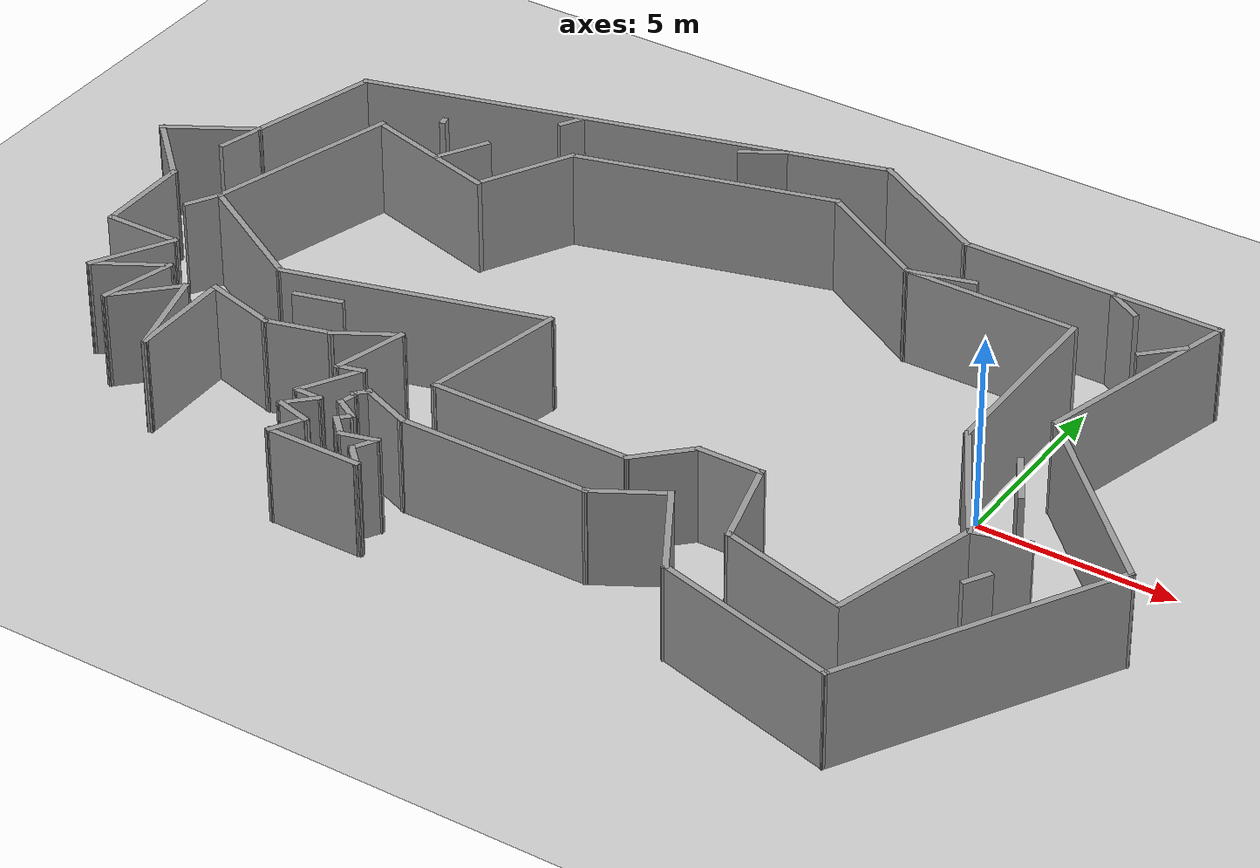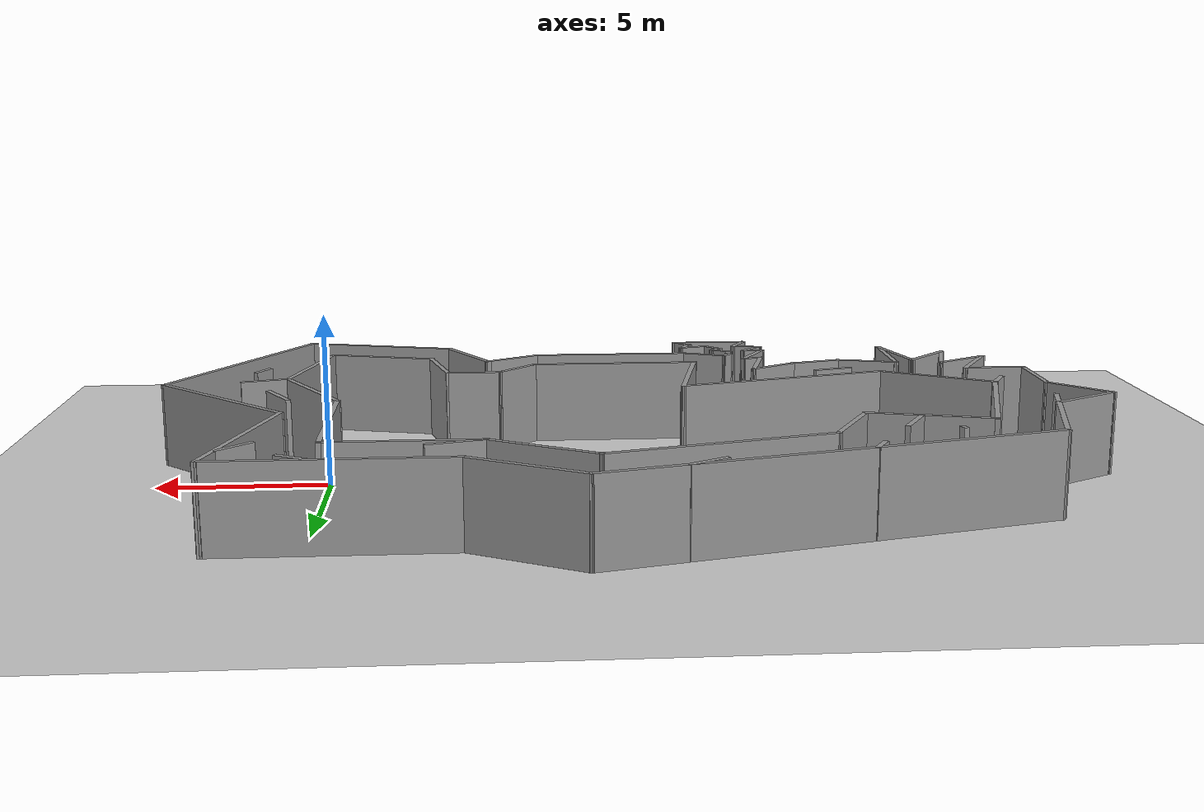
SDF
<sdf version="1.5">
 <world name="default">
  <include><static>1</static><uri>model://deep_parkour</uri></include>
  <physics name="ode_70iters" type="ode">
   <real_time_update_rate>1000</real_time_update_rate>
   <ode><solver><type>quick</type><iters>100</iters></solver></ode>
  </physics>
  <include><uri>model://ground_plane</uri></include>
  <include><uri>model://sun</uri></include>
  <light type="directional" name="my_light0">
   <pose>0 0 30 0 0 0</pose>
   <diffuse>0.5 0.5 0.5 1</diffuse>
   <specular>0.1 0.1 0.1 1</specular>
   <direction>0.1 0.1 -0.9</direction>
   <attenuation>
    <range>20</range>
    <linear>0.01</linear>
    <constant>0.5</constant>
    <quadratic>0.001</quadratic>
   </attenuation>
   <cast_shadows>0</cast_shadows>
  </light>
  <scene><ambient>0.0 0.0 0.0 1.0</ambient><shadows>0</shadows></scene>
 </world>
</sdf>

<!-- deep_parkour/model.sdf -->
<sdf version='1.6'>
  <model name='deep_parkour'>
    <pose frame=''>-8.92528 -0.363415 0 0 -0 0</pose>
    <link name='Wall_10'>
      <collision name='Wall_10_Collision'>
        <geometry>
          <box>
            <size>5.25 0.15 2.5</size>
          </box>
        </geometry>
        <pose frame=''>0 0 1.25 0 -0 0</pose>
      </collision>
      <visual name='Wall_10_Visual'>
        <pose frame=''>0 0 1.25 0 -0 0</pose>
        <geometry>
          <box>
            <size>5.25 0.15 2.5</size>
          </box>
        </geometry>
        <material>
          <script>
            <uri>file://media/materials/scripts/gazebo.material</uri>
            <name>Gazebo/Grey</name>
          </script>
          <ambient>1 1 1 1</ambient>
        </material>
        <meta>
          <layer>0</layer>
        </meta>
      </visual>
      <pose frame=''>0.326482 -4.56206 0 0 -0 0</pose>
    </link>
    <link name='Wall_11'>
      <collision name='Wall_11_Collision'>
        <geometry>
          <box>
            <size>1.75 0.15 2.5</size>
          </box>
        </geometry>
        <pose frame=''>0 0 1.25 0 -0 0</pose>
      </collision>
      <visual name='Wall_11_Visual'>
        <pose frame=''>0 0 1.25 0 -0 0</pose>
        <geometry>
          <box>
            <size>1.75 0.15 2.5</size>
          </box>
        </geometry>
        <material>
          <script>
            <uri>file://media/materials/scripts/gazebo.material</uri>
            <name>Gazebo/Grey</name>
          </script>
          <ambient>1 1 1 1</ambient>
        </material>
        <meta>
          <layer>0</layer>
        </meta>
      </visual>
      <pose frame=''>3.44217 -3.99637 0 0 -0 0.785398</pose>
    </link>
    <link name='Wall_12'>
      <collision name='Wall_12_Collision'>
        <geometry>
          <box>
            <size>1.75 0.15 2.5</size>
          </box>
        </geometry>
        <pose frame=''>0 0 1.25 0 -0 0</pose>
      </collision>
      <visual name='Wall_12_Visual'>
        <pose frame=''>0 0 1.25 0 -0 0</pose>
        <geometry>
          <box>
            <size>1.75 0.15 2.5</size>
          </box>
        </geometry>
        <material>
          <script>
            <uri>file://media/materials/scripts/gazebo.material</uri>
            <name>Gazebo/Grey</name>
          </script>
          <ambient>1 1 1 1</ambient>
        </material>
        <meta>
          <layer>0</layer>
        </meta>
      </visual>
      <pose frame=''>4.80785 -3.43069 0 0 -0 0</pose>
    </link>
    <link name='Wall_13'>
      <collision name='Wall_13_Collision'>
        <geometry>
          <box>
            <size>2.5 0.15 2.5</size>
          </box>
        </geometry>
        <pose frame=''>0 0 1.25 0 -0 0</pose>
      </collision>
      <visual name='Wall_13_Visual'>
        <pose frame=''>0 0 1.25 0 -0 0</pose>
        <geometry>
          <box>
            <size>2.5 0.15 2.5</size>
          </box>
        </geometry>
        <material>
          <script>
            <uri>file://media/materials/scripts/gazebo.material</uri>
            <name>Gazebo/Grey</name>
          </script>
          <ambient>1 1 1 1</ambient>
        </material>
        <meta>
          <layer>0</layer>
        </meta>
      </visual>
      <pose frame=''>5.91197 -4.56565 0 0 -0 -1.309</pose>
    </link>
    <link name='Wall_14'>
      <collision name='Wall_14_Collision'>
        <geometry>
          <box>
            <size>3.5 0.15 2.5</size>
          </box>
        </geometry>
        <pose frame=''>0 0 1.25 0 -0 0</pose>
      </collision>
      <visual name='Wall_14_Visual'>
        <pose frame=''>0 0 1.25 0 -0 0</pose>
        <geometry>
          <box>
            <size>3.5 0.15 2.5</size>
          </box>
        </geometry>
        <material>
          <script>
            <uri>file://media/materials/scripts/gazebo.material</uri>
            <name>Gazebo/Grey</name>
          </script>
          <ambient>1 1 1 1</ambient>
        </material>
        <meta>
          <layer>0</layer>
        </meta>
      </visual>
      <pose frame=''>7.834 -6.13414 0 0 -0 -0.261799</pose>
    </link>
    <link name='Wall_15'>
      <collision name='Wall_15_Collision'>
        <geometry>
          <box>
            <size>4 0.15 2.5</size>
          </box>
        </geometry>
        <pose frame=''>0 0 1.25 0 -0 0</pose>
      </collision>
      <visual name='Wall_15_Visual'>
        <pose frame=''>0 0 1.25 0 -0 0</pose>
        <geometry>
          <box>
            <size>4 0.15 2.5</size>
          </box>
        </geometry>
        <material>
          <script>
            <uri>file://media/materials/scripts/gazebo.material</uri>
            <name>Gazebo/Grey</name>
          </script>
          <ambient>1 1 1 1</ambient>
        </material>
        <meta>
          <layer>0</layer>
        </meta>
      </visual>
      <pose frame=''>9.95016 -4.70825 0 0 -0 1.309</pose>
    </link>
    <link name='Wall_16'>
      <collision name='Wall_16_Collision'>
        <geometry>
          <box>
            <size>3.75 0.15 2.5</size>
          </box>
        </geometry>
        <pose frame=''>0 0 1.25 0 -0 0</pose>
      </collision>
      <visual name='Wall_16_Visual'>
        <pose frame=''>0 0 1.25 0 -0 0</pose>
        <geometry>
          <box>
            <size>3.75 0.15 2.5</size>
          </box>
        </geometry>
        <material>
          <script>
            <uri>file://media/materials/scripts/gazebo.material</uri>
            <name>Gazebo/Grey</name>
          </script>
          <ambient>1 1 1 1</ambient>
        </material>
        <meta>
          <layer>0</layer>
        </meta>
      </visual>
      <pose frame=''>9.54838 -1.29 0 0 -0 2.0944</pose>
    </link>
    <link name='Wall_17'>
      <collision name='Wall_17_Collision'>
        <geometry>
          <box>
            <size>5 0.15 2.5</size>
          </box>
        </geometry>
        <pose frame=''>0 0 1.25 0 -0 0</pose>
      </collision>
      <visual name='Wall_17_Visual'>
        <pose frame=''>0 0 1.25 0 -0 0</pose>
        <geometry>
          <box>
            <size>5 0.15 2.5</size>
          </box>
        </geometry>
        <material>
          <script>
            <uri>file://media/materials/scripts/gazebo.material</uri>
            <name>Gazebo/Grey</name>
          </script>
          <ambient>1 1 1 1</ambient>
        </material>
        <meta>
          <layer>0</layer>
        </meta>
      </visual>
      <pose frame=''>8.64838 2.69385 0 0 -0 1.5708</pose>
    </link>
    <link name='Wall_18'>
      <collision name='Wall_18_Collision'>
        <geometry>
          <box>
            <size>4.5 0.15 2.5</size>
          </box>
        </geometry>
        <pose frame=''>0 0 1.25 0 -0 0</pose>
      </collision>
      <visual name='Wall_18_Visual'>
        <pose frame=''>0 0 1.25 0 -0 0</pose>
        <geometry>
          <box>
            <size>4.5 0.15 2.5</size>
          </box>
        </geometry>
        <material>
          <script>
            <uri>file://media/materials/scripts/gazebo.material</uri>
            <name>Gazebo/Grey</name>
          </script>
          <ambient>1 1 1 1</ambient>
        </material>
        <meta>
          <layer>0</layer>
        </meta>
      </visual>
      <pose frame=''>6.47338 5.11885 0 0 -0 3.14159</pose>
    </link>
    <link name='Wall_19'>
      <collision name='Wall_19_Collision'>
        <geometry>
          <box>
            <size>3.5 0.15 2.5</size>
          </box>
        </geometry>
        <pose frame=''>0 0 1.25 0 -0 0</pose>
      </collision>
      <visual name='Wall_19_Visual'>
        <pose frame=''>0 0 1.25 0 -0 0</pose>
        <geometry>
          <box>
            <size>3.5 0.15 2.5</size>
          </box>
        </geometry>
        <material>
          <script>
            <uri>file://media/materials/scripts/gazebo.material</uri>
            <name>Gazebo/Grey</name>
          </script>
          <ambient>1 1 1 1</ambient>
        </material>
        <meta>
          <layer>0</layer>
        </meta>
      </visual>
      <pose frame=''>2.84779 5.95635 0 0 -0 2.61799</pose>
    </link>
    <link name='Wall_20'>
      <collision name='Wall_20_Collision'>
        <geometry>
          <box>
            <size>6.75 0.15 2.5</size>
          </box>
        </geometry>
        <pose frame=''>0 0 1.25 0 -0 0</pose>
      </collision>
      <visual name='Wall_20_Visual'>
        <pose frame=''>0 0 1.25 0 -0 0</pose>
        <geometry>
          <box>
            <size>6.75 0.15 2.5</size>
          </box>
        </geometry>
        <material>
          <script>
            <uri>file://media/materials/scripts/gazebo.material</uri>
            <name>Gazebo/Grey</name>
          </script>
          <ambient>1 1 1 1</ambient>
        </material>
        <meta>
          <layer>0</layer>
        </meta>
      </visual>
      <pose frame=''>-1.79036 5.93975 0 0 -0 -2.87979</pose>
    </link>
    <link name='Wall_21'>
      <collision name='Wall_21_Collision'>
        <geometry>
          <box>
            <size>2.67804 0.15 2.5</size>
          </box>
        </geometry>
        <pose frame=''>0 0 1.25 0 -0 0</pose>
      </collision>
      <visual name='Wall_21_Visual'>
        <pose frame=''>0 0 1.25 0 -0 0</pose>
        <geometry>
          <box>
            <size>2.67804 0.15 2.5</size>
          </box>
        </geometry>
        <material>
          <script>
            <uri>file://media/materials/scripts/gazebo.material</uri>
            <name>Gazebo/Grey</name>
          </script>
          <ambient>1 1 1 1</ambient>
        </material>
        <meta>
          <layer>0</layer>
        </meta>
      </visual>
      <pose frame=''>-5.58177 3.97519 0 0 -0 -2.06886</pose>
    </link>
    <link name='Wall_22'>
      <collision name='Wall_22_Collision'>
        <geometry>
          <box>
            <size>3.75 0.15 2.5</size>
          </box>
        </geometry>
        <pose frame=''>0 0 1.25 0 -0 0</pose>
      </collision>
      <visual name='Wall_22_Visual'>
        <pose frame=''>0 0 1.25 0 -0 0</pose>
        <geometry>
          <box>
            <size>3.75 0.15 2.5</size>
          </box>
        </geometry>
        <material>
          <script>
            <uri>file://media/materials/scripts/gazebo.material</uri>
            <name>Gazebo/Grey</name>
          </script>
          <ambient>1 1 1 1</ambient>
        </material>
        <meta>
          <layer>0</layer>
        </meta>
      </visual>
      <pose frame=''>-7.92429 3.29985 0 0 -0 2.87979</pose>
    </link>
    <link name='Wall_23'>
      <collision name='Wall_23_Collision'>
        <geometry>
          <box>
            <size>5.05427 0.15 2.5</size>
          </box>
        </geometry>
        <pose frame=''>0 0 1.25 0 -0 0</pose>
      </collision>
      <visual name='Wall_23_Visual'>
        <pose frame=''>0 0 1.25 0 -0 0</pose>
        <geometry>
          <box>
            <size>5.05427 0.15 2.5</size>
          </box>
        </geometry>
        <material>
          <script>
            <uri>file://media/materials/scripts/gazebo.material</uri>
            <name>Gazebo/Grey</name>
          </script>
          <ambient>1 1 1 1</ambient>
        </material>
        <meta>
          <layer>0</layer>
        </meta>
      </visual>
      <pose frame=''>-10.3367 1.43874 0 0 -0 -1.84915</pose>
    </link>
    <link name='Wall_24'>
      <collision name='Wall_24_Collision'>
        <geometry>
          <box>
            <size>3.75 0.15 2.5</size>
          </box>
        </geometry>
        <pose frame=''>0 0 1.25 0 -0 0</pose>
      </collision>
      <visual name='Wall_24_Visual'>
        <pose frame=''>0 0 1.25 0 -0 0</pose>
        <geometry>
          <box>
            <size>3.75 0.15 2.5</size>
          </box>
        </geometry>
        <material>
          <script>
            <uri>file://media/materials/scripts/gazebo.material</uri>
            <name>Gazebo/Grey</name>
          </script>
          <ambient>1 1 1 1</ambient>
        </material>
        <meta>
          <layer>0</layer>
        </meta>
      </visual>
      <pose frame=''>-9.45167 -1.81902 0 0 -0 -0.523599</pose>
    </link>
    <link name='Wall_25'>
      <collision name='Wall_25_Collision'>
        <geometry>
          <box>
            <size>6.75 0.15 2.5</size>
          </box>
        </geometry>
        <pose frame=''>0 0 1.25 0 -0 0</pose>
      </collision>
      <visual name='Wall_25_Visual'>
        <pose frame=''>0 0 1.25 0 -0 0</pose>
        <geometry>
          <box>
            <size>6.75 0.15 2.5</size>
          </box>
        </geometry>
        <material>
          <script>
            <uri>file://media/materials/scripts/gazebo.material</uri>
            <name>Gazebo/Grey</name>
          </script>
          <ambient>1 1 1 1</ambient>
        </material>
        <meta>
          <layer>0</layer>
        </meta>
      </visual>
      <pose frame=''>-4.70527 -1.86491 0 0 -0 0.261799</pose>
    </link>
    <link name='Wall_26'>
      <collision name='Wall_26_Collision'>
        <geometry>
          <box>
            <size>3.77071 0.15 2.5</size>
          </box>
        </geometry>
        <pose frame=''>0 0 1.25 0 -0 0</pose>
      </collision>
      <visual name='Wall_26_Visual'>
        <pose frame=''>0 0 1.25 0 -0 0</pose>
        <geometry>
          <box>
            <size>3.77071 0.15 2.5</size>
          </box>
        </geometry>
        <material>
          <script>
            <uri>file://media/materials/scripts/gazebo.material</uri>
            <name>Gazebo/Grey</name>
          </script>
          <ambient>1 1 1 1</ambient>
        </material>
        <meta>
          <layer>0</layer>
        </meta>
      </visual>
      <pose frame=''>-1.87062 -2.78643 0 0 -0 -1.76699</pose>
    </link>
    <link name='Wall_28'>
      <collision name='Wall_28_Collision'>
        <geometry>
          <box>
            <size>5 0.15 2.5</size>
          </box>
        </geometry>
        <pose frame=''>0 0 1.25 0 -0 0</pose>
      </collision>
      <visual name='Wall_28_Visual'>
        <pose frame=''>0 0 1.25 0 -0 0</pose>
        <geometry>
          <box>
            <size>5 0.15 2.5</size>
          </box>
        </geometry>
        <material>
          <script>
            <uri>file://media/materials/scripts/gazebo.material</uri>
            <name>Gazebo/Grey</name>
          </script>
          <ambient>1 1 1 1</ambient>
        </material>
        <meta>
          <layer>0</layer>
        </meta>
      </visual>
      <pose frame=''>0.358173 -6.06446 0 0 -0 0</pose>
    </link>
    <link name='Wall_29'>
      <collision name='Wall_29_Collision'>
        <geometry>
          <box>
            <size>2 0.15 2.5</size>
          </box>
        </geometry>
        <pose frame=''>0 0 1.25 0 -0 0</pose>
      </collision>
      <visual name='Wall_29_Visual'>
        <pose frame=''>0 0 1.25 0 -0 0</pose>
        <geometry>
          <box>
            <size>2 0.15 2.5</size>
          </box>
        </geometry>
        <material>
          <script>
            <uri>file://media/materials/scripts/gazebo.material</uri>
            <name>Gazebo/Grey</name>
          </script>
          <ambient>1 1 1 1</ambient>
        </material>
        <meta>
          <layer>0</layer>
        </meta>
      </visual>
      <pose frame=''>3.58425 -5.60196 0 0 -0 0.523599</pose>
    </link>
    <link name='Wall_30'>
      <collision name='Wall_30_Collision'>
        <geometry>
          <box>
            <size>2.75 0.15 2.5</size>
          </box>
        </geometry>
        <pose frame=''>0 0 1.25 0 -0 0</pose>
      </collision>
      <visual name='Wall_30_Visual'>
        <pose frame=''>0 0 1.25 0 -0 0</pose>
        <geometry>
          <box>
            <size>2.75 0.15 2.5</size>
          </box>
        </geometry>
        <material>
          <script>
            <uri>file://media/materials/scripts/gazebo.material</uri>
            <name>Gazebo/Grey</name>
          </script>
          <ambient>1 1 1 1</ambient>
        </material>
        <meta>
          <layer>0</layer>
        </meta>
      </visual>
      <pose frame=''>5.03532 -6.26529 0 0 -0 -1.0472</pose>
    </link>
    <link name='Wall_31'>
      <collision name='Wall_31_Collision'>
        <geometry>
          <box>
            <size>5 0.15 2.5</size>
          </box>
        </geometry>
        <pose frame=''>0 0 1.25 0 -0 0</pose>
      </collision>
      <visual name='Wall_31_Visual'>
        <pose frame=''>0 0 1.25 0 -0 0</pose>
        <geometry>
          <box>
            <size>5 0.15 2.5</size>
          </box>
        </geometry>
        <material>
          <script>
            <uri>file://media/materials/scripts/gazebo.material</uri>
            <name>Gazebo/Grey</name>
          </script>
          <ambient>1 1 1 1</ambient>
        </material>
        <meta>
          <layer>0</layer>
        </meta>
      </visual>
      <pose frame=''>8.02769 -8.01876 0 0 -0 -0.261799</pose>
    </link>
    <link name='Wall_32'>
      <collision name='Wall_32_Collision'>
        <geometry>
          <box>
            <size>7.5 0.15 2.5</size>
          </box>
        </geometry>
        <pose frame=''>0 0 1.25 0 -0 0</pose>
      </collision>
      <visual name='Wall_32_Visual'>
        <pose frame=''>0 0 1.25 0 -0 0</pose>
        <geometry>
          <box>
            <size>7.5 0.15 2.5</size>
          </box>
        </geometry>
        <material>
          <script>
            <uri>file://media/materials/scripts/gazebo.material</uri>
            <name>Gazebo/Grey</name>
          </script>
          <ambient>1 1 1 1</ambient>
        </material>
        <meta>
          <layer>0</layer>
        </meta>
      </visual>
      <pose frame=''>12.2076 -5.46375 0 0 -0 1.0472</pose>
    </link>
    <link name='Wall_33'>
      <collision name='Wall_33_Collision'>
        <geometry>
          <box>
            <size>5.75 0.15 2.5</size>
          </box>
        </geometry>
        <pose frame=''>0 0 1.25 0 -0 0</pose>
      </collision>
      <visual name='Wall_33_Visual'>
        <pose frame=''>0 0 1.25 0 -0 0</pose>
        <geometry>
          <box>
            <size>5.75 0.15 2.5</size>
          </box>
        </geometry>
        <material>
          <script>
            <uri>file://media/materials/scripts/gazebo.material</uri>
            <name>Gazebo/Grey</name>
          </script>
          <ambient>1 1 1 1</ambient>
        </material>
        <meta>
          <layer>0</layer>
        </meta>
      </visual>
      <pose frame=''>12.0652 -0.301209 0 0 -0 2.35619</pose>
    </link>
    <link name='Wall_34'>
      <collision name='Wall_34_Collision'>
        <geometry>
          <box>
            <size>5.5 0.15 2.5</size>
          </box>
        </geometry>
        <pose frame=''>0 0 1.25 0 -0 0</pose>
      </collision>
      <visual name='Wall_34_Visual'>
        <pose frame=''>0 0 1.25 0 -0 0</pose>
        <geometry>
          <box>
            <size>5.5 0.15 2.5</size>
          </box>
        </geometry>
        <material>
          <script>
            <uri>file://media/materials/scripts/gazebo.material</uri>
            <name>Gazebo/Grey</name>
          </script>
          <ambient>1 1 1 1</ambient>
        </material>
        <meta>
          <layer>0</layer>
        </meta>
      </visual>
      <pose frame=''>10.7776 4.26254 0 0 -0 1.309</pose>
    </link>
    <link name='Wall_35'>
      <collision name='Wall_35_Collision'>
        <geometry>
          <box>
            <size>6.75 0.15 2.5</size>
          </box>
        </geometry>
        <pose frame=''>0 0 1.25 0 -0 0</pose>
      </collision>
      <visual name='Wall_35_Visual'>
        <pose frame=''>0 0 1.25 0 -0 0</pose>
        <geometry>
          <box>
            <size>6.75 0.15 2.5</size>
          </box>
        </geometry>
        <material>
          <script>
            <uri>file://media/materials/scripts/gazebo.material</uri>
            <name>Gazebo/Grey</name>
          </script>
          <ambient>1 1 1 1</ambient>
        </material>
        <meta>
          <layer>0</layer>
        </meta>
      </visual>
      <pose frame=''>8.16994 6.84639 0 0 -0 3.14159</pose>
    </link>
    <link name='Wall_36'>
      <collision name='Wall_36_Collision'>
        <geometry>
          <box>
            <size>3.75 0.15 2.5</size>
          </box>
        </geometry>
        <pose frame=''>0 0 1.25 0 -0 0</pose>
      </collision>
      <visual name='Wall_36_Visual'>
        <pose frame=''>0 0 1.25 0 -0 0</pose>
        <geometry>
          <box>
            <size>3.75 0.15 2.5</size>
          </box>
        </geometry>
        <material>
          <script>
            <uri>file://media/materials/scripts/gazebo.material</uri>
            <name>Gazebo/Grey</name>
          </script>
          <ambient>1 1 1 1</ambient>
        </material>
        <meta>
          <layer>0</layer>
        </meta>
      </visual>
      <pose frame=''>3.3111 7.74639 0 0 -0 2.61799</pose>
    </link>
    <link name='Wall_37'>
      <collision name='Wall_37_Collision'>
        <geometry>
          <box>
            <size>13.5 0.15 2.5</size>
          </box>
        </geometry>
        <pose frame=''>0 0 1.25 0 -0 0</pose>
      </collision>
      <visual name='Wall_37_Visual'>
        <pose frame=''>0 0 1.25 0 -0 0</pose>
        <geometry>
          <box>
            <size>13.5 0.15 2.5</size>
          </box>
        </geometry>
        <material>
          <script>
            <uri>file://media/materials/scripts/gazebo.material</uri>
            <name>Gazebo/Grey</name>
          </script>
          <ambient>1 1 1 1</ambient>
        </material>
        <meta>
          <layer>0</layer>
        </meta>
      </visual>
      <pose frame=''>-4.6953 6.91878 0 0 -0 -2.87979</pose>
    </link>
    <link name='Wall_38'>
      <collision name='Wall_38_Collision'>
        <geometry>
          <box>
            <size>3.5 0.15 2.5</size>
          </box>
        </geometry>
        <pose frame=''>0 0 1.25 0 -0 0</pose>
      </collision>
      <visual name='Wall_38_Visual'>
        <pose frame=''>0 0 1.25 0 -0 0</pose>
        <geometry>
          <box>
            <size>3.5 0.15 2.5</size>
          </box>
        </geometry>
        <material>
          <script>
            <uri>file://media/materials/scripts/gazebo.material</uri>
            <name>Gazebo/Grey</name>
          </script>
          <ambient>1 1 1 1</ambient>
        </material>
        <meta>
          <layer>0</layer>
        </meta>
      </visual>
      <pose frame=''>-11.5764 3.57323 0 0 -0 -1.8326</pose>
    </link>
    <link name='Wall_39'>
      <collision name='Wall_39_Collision'>
        <geometry>
          <box>
            <size>2.5 0.15 2.5</size>
          </box>
        </geometry>
        <pose frame=''>0 0 1.25 0 -0 0</pose>
      </collision>
      <visual name='Wall_39_Visual'>
        <pose frame=''>0 0 1.25 0 -0 0</pose>
        <geometry>
          <box>
            <size>2.5 0.15 2.5</size>
          </box>
        </geometry>
        <material>
          <script>
            <uri>file://media/materials/scripts/gazebo.material</uri>
            <name>Gazebo/Grey</name>
          </script>
          <ambient>1 1 1 1</ambient>
        </material>
        <meta>
          <layer>0</layer>
        </meta>
      </visual>
      <pose frame=''>-13.0275 1.36781 0 0 -0 -2.61799</pose>
    </link>
    <link name='Wall_40'>
      <collision name='Wall_40_Collision'>
        <geometry>
          <box>
            <size>2.25 0.15 2.5</size>
          </box>
        </geometry>
        <pose frame=''>0 0 1.25 0 -0 0</pose>
      </collision>
      <visual name='Wall_40_Visual'>
        <pose frame=''>0 0 1.25 0 -0 0</pose>
        <geometry>
          <box>
            <size>2.25 0.15 2.5</size>
          </box>
        </geometry>
        <material>
          <script>
            <uri>file://media/materials/scripts/gazebo.material</uri>
            <name>Gazebo/Grey</name>
          </script>
          <ambient>1 1 1 1</ambient>
        </material>
        <meta>
          <layer>0</layer>
        </meta>
      </visual>
      <pose frame=''>-13.3026 0.037846 0 0 -0 -0.785398</pose>
    </link>
    <link name='Wall_41'>
      <collision name='Wall_41_Collision'>
        <geometry>
          <box>
            <size>2.5 0.15 2.5</size>
          </box>
        </geometry>
        <pose frame=''>0 0 1.25 0 -0 0</pose>
      </collision>
      <visual name='Wall_41_Visual'>
        <pose frame=''>0 0 1.25 0 -0 0</pose>
        <geometry>
          <box>
            <size>2.5 0.15 2.5</size>
          </box>
        </geometry>
        <material>
          <script>
            <uri>file://media/materials/scripts/gazebo.material</uri>
            <name>Gazebo/Grey</name>
          </script>
          <ambient>1 1 1 1</ambient>
        </material>
        <meta>
          <layer>0</layer>
        </meta>
      </visual>
      <pose frame=''>-12.5601 -1.87962 0 0 -0 -1.5708</pose>
    </link>
    <link name='Wall_42'>
      <collision name='Wall_42_Collision'>
        <geometry>
          <box>
            <size>2 0.15 2.5</size>
          </box>
        </geometry>
        <pose frame=''>0 0 1.25 0 -0 0</pose>
      </collision>
      <visual name='Wall_42_Visual'>
        <pose frame=''>0 0 1.25 0 -0 0</pose>
        <geometry>
          <box>
            <size>2 0.15 2.5</size>
          </box>
        </geometry>
        <material>
          <script>
            <uri>file://media/materials/scripts/gazebo.material</uri>
            <name>Gazebo/Grey</name>
          </script>
          <ambient>1 1 1 1</ambient>
        </material>
        <meta>
          <layer>0</layer>
        </meta>
      </visual>
      <pose frame=''>-11.6351 -3.05462 0 0 -0 0</pose>
    </link>
    <link name='Wall_43'>
      <collision name='Wall_43_Collision'>
        <geometry>
          <box>
            <size>2.25 0.15 2.5</size>
          </box>
        </geometry>
        <pose frame=''>0 0 1.25 0 -0 0</pose>
      </collision>
      <visual name='Wall_43_Visual'>
        <pose frame=''>0 0 1.25 0 -0 0</pose>
        <geometry>
          <box>
            <size>2.25 0.15 2.5</size>
          </box>
        </geometry>
        <material>
          <script>
            <uri>file://media/materials/scripts/gazebo.material</uri>
            <name>Gazebo/Grey</name>
          </script>
          <ambient>1 1 1 1</ambient>
        </material>
        <meta>
          <layer>0</layer>
        </meta>
      </visual>
      <pose frame=''>-11.2351 -3.96394 0 0 -0 -2.0944</pose>
    </link>
    <link name='Wall_44'>
      <collision name='Wall_44_Collision'>
        <geometry>
          <box>
            <size>2 0.15 2.5</size>
          </box>
        </geometry>
        <pose frame=''>0 0 1.25 0 -0 0</pose>
      </collision>
      <visual name='Wall_44_Visual'>
        <pose frame=''>0 0 1.25 0 -0 0</pose>
        <geometry>
          <box>
            <size>2 0.15 2.5</size>
          </box>
        </geometry>
        <material>
          <script>
            <uri>file://media/materials/scripts/gazebo.material</uri>
            <name>Gazebo/Grey</name>
          </script>
          <ambient>1 1 1 1</ambient>
        </material>
        <meta>
          <layer>0</layer>
        </meta>
      </visual>
      <pose frame=''>-10.9591 -4.41077 0 0 -0 0.523599</pose>
    </link>
    <link name='Wall_45'>
      <collision name='Wall_45_Collision'>
        <geometry>
          <box>
            <size>2 0.15 2.5</size>
          </box>
        </geometry>
        <pose frame=''>0 0 1.25 0 -0 0</pose>
      </collision>
      <visual name='Wall_45_Visual'>
        <pose frame=''>0 0 1.25 0 -0 0</pose>
        <geometry>
          <box>
            <size>2 0.15 2.5</size>
          </box>
        </geometry>
        <material>
          <script>
            <uri>file://media/materials/scripts/gazebo.material</uri>
            <name>Gazebo/Grey</name>
          </script>
          <ambient>1 1 1 1</ambient>
        </material>
        <meta>
          <layer>0</layer>
        </meta>
      </visual>
      <pose frame=''>-10.3974 -4.84175 0 0 -0 -1.8326</pose>
    </link>
    <link name='Wall_46'>
      <collision name='Wall_46_Collision'>
        <geometry>
          <box>
            <size>2 0.15 2.5</size>
          </box>
        </geometry>
        <pose frame=''>0 0 1.25 0 -0 0</pose>
      </collision>
      <visual name='Wall_46_Visual'>
        <pose frame=''>0 0 1.25 0 -0 0</pose>
        <geometry>
          <box>
            <size>2 0.15 2.5</size>
          </box>
        </geometry>
        <material>
          <script>
            <uri>file://media/materials/scripts/gazebo.material</uri>
            <name>Gazebo/Grey</name>
          </script>
          <ambient>1 1 1 1</ambient>
        </material>
        <meta>
          <layer>0</layer>
        </meta>
      </visual>
      <pose frame=''>-9.98273 -5.08116 0 0 -0 0.785398</pose>
    </link>
    <link name='Wall_47'>
      <collision name='Wall_47_Collision'>
        <geometry>
          <box>
            <size>2.5 0.15 2.5</size>
          </box>
        </geometry>
        <pose frame=''>0 0 1.25 0 -0 0</pose>
      </collision>
      <visual name='Wall_47_Visual'>
        <pose frame=''>0 0 1.25 0 -0 0</pose>
        <geometry>
          <box>
            <size>2.5 0.15 2.5</size>
          </box>
        </geometry>
        <material>
          <script>
            <uri>file://media/materials/scripts/gazebo.material</uri>
            <name>Gazebo/Grey</name>
          </script>
          <ambient>1 1 1 1</ambient>
        </material>
        <meta>
          <layer>0</layer>
        </meta>
      </visual>
      <pose frame=''>-9.02454 -5.56205 0 0 -0 -1.309</pose>
    </link>
    <link name='Wall_48'>
      <collision name='Wall_48_Collision'>
        <geometry>
          <box>
            <size>2.75 0.15 2.5</size>
          </box>
        </geometry>
        <pose frame=''>0 0 1.25 0 -0 0</pose>
      </collision>
      <visual name='Wall_48_Visual'>
        <pose frame=''>0 0 1.25 0 -0 0</pose>
        <geometry>
          <box>
            <size>2.75 0.15 2.5</size>
          </box>
        </geometry>
        <material>
          <script>
            <uri>file://media/materials/scripts/gazebo.material</uri>
            <name>Gazebo/Grey</name>
          </script>
          <ambient>1 1 1 1</ambient>
        </material>
        <meta>
          <layer>0</layer>
        </meta>
      </visual>
      <pose frame=''>-8.72043 -5.39701 0 0 -0 1.5708</pose>
    </link>
    <link name='Wall_49'>
      <collision name='Wall_49_Collision'>
        <geometry>
          <box>
            <size>2 0.15 2.5</size>
          </box>
        </geometry>
        <pose frame=''>0 0 1.25 0 -0 0</pose>
      </collision>
      <visual name='Wall_49_Visual'>
        <pose frame=''>0 0 1.25 0 -0 0</pose>
        <geometry>
          <box>
            <size>2 0.15 2.5</size>
          </box>
        </geometry>
        <material>
          <script>
            <uri>file://media/materials/scripts/gazebo.material</uri>
            <name>Gazebo/Grey</name>
          </script>
          <ambient>1 1 1 1</ambient>
        </material>
        <meta>
          <layer>0</layer>
        </meta>
      </visual>
      <pose frame=''>-7.82695 -4.33642 0 0 -0 -0.261799</pose>
    </link>
    <link name='Wall_50'>
      <collision name='Wall_50_Collision'>
        <geometry>
          <box>
            <size>1.75 0.15 2.5</size>
          </box>
        </geometry>
        <pose frame=''>0 0 1.25 0 -0 0</pose>
      </collision>
      <visual name='Wall_50_Visual'>
        <pose frame=''>0 0 1.25 0 -0 0</pose>
        <geometry>
          <box>
            <size>1.75 0.15 2.5</size>
          </box>
        </geometry>
        <material>
          <script>
            <uri>file://media/materials/scripts/gazebo.material</uri>
            <name>Gazebo/Grey</name>
          </script>
          <ambient>1 1 1 1</ambient>
        </material>
        <meta>
          <layer>0</layer>
        </meta>
      </visual>
      <pose frame=''>-6.16073 -4.36877 0 0 -0 0.261799</pose>
    </link>
    <link name='Wall_51'>
      <collision name='Wall_51_Collision'>
        <geometry>
          <box>
            <size>1.75 0.15 2.5</size>
          </box>
        </geometry>
        <pose frame=''>0 0 1.25 0 -0 0</pose>
      </collision>
      <visual name='Wall_51_Visual'>
        <pose frame=''>0 0 1.25 0 -0 0</pose>
        <geometry>
          <box>
            <size>1.75 0.15 2.5</size>
          </box>
        </geometry>
        <material>
          <script>
            <uri>file://media/materials/scripts/gazebo.material</uri>
            <name>Gazebo/Grey</name>
          </script>
          <ambient>1 1 1 1</ambient>
        </material>
        <meta>
          <layer>0</layer>
        </meta>
      </visual>
      <pose frame=''>-4.69517 -3.76172 0 0 -0 0.523599</pose>
    </link>
    <link name='Wall_52'>
      <collision name='Wall_52_Collision'>
        <geometry>
          <box>
            <size>2 0.15 2.5</size>
          </box>
        </geometry>
        <pose frame=''>0 0 1.25 0 -0 0</pose>
      </collision>
      <visual name='Wall_52_Visual'>
        <pose frame=''>0 0 1.25 0 -0 0</pose>
        <geometry>
          <box>
            <size>2 0.15 2.5</size>
          </box>
        </geometry>
        <material>
          <script>
            <uri>file://media/materials/scripts/gazebo.material</uri>
            <name>Gazebo/Grey</name>
          </script>
          <ambient>1 1 1 1</ambient>
        </material>
        <meta>
          <layer>0</layer>
        </meta>
      </visual>
      <pose frame=''>-4.24176 -4.2552 0 0 -0 -1.8326</pose>
    </link>
    <link name='Wall_53'>
      <collision name='Wall_53_Collision'>
        <geometry>
          <box>
            <size>0.75 0.15 2.5</size>
          </box>
        </geometry>
        <pose frame=''>0 0 1.25 0 -0 0</pose>
      </collision>
      <visual name='Wall_53_Visual'>
        <pose frame=''>0 0 1.25 0 -0 0</pose>
        <geometry>
          <box>
            <size>0.75 0.15 2.5</size>
          </box>
        </geometry>
        <material>
          <script>
            <uri>file://media/materials/scripts/gazebo.material</uri>
            <name>Gazebo/Grey</name>
          </script>
          <ambient>1 1 1 1</ambient>
        </material>
        <meta>
          <layer>0</layer>
        </meta>
      </visual>
      <pose frame=''>-4.19139 -5.07103 0 0 -0 0.261799</pose>
    </link>
    <link name='Wall_54'>
      <collision name='Wall_54_Collision'>
        <geometry>
          <box>
            <size>1.75 0.15 2.5</size>
          </box>
        </geometry>
        <pose frame=''>0 0 1.25 0 -0 0</pose>
      </collision>
      <visual name='Wall_54_Visual'>
        <pose frame=''>0 0 1.25 0 -0 0</pose>
        <geometry>
          <box>
            <size>1.75 0.15 2.5</size>
          </box>
        </geometry>
        <material>
          <script>
            <uri>file://media/materials/scripts/gazebo.material</uri>
            <name>Gazebo/Grey</name>
          </script>
          <ambient>1 1 1 1</ambient>
        </material>
        <meta>
          <layer>0</layer>
        </meta>
      </visual>
      <pose frame=''>-4.30161 -5.68621 0 0 -0 -2.0944</pose>
    </link>
    <link name='Wall_55'>
      <collision name='Wall_55_Collision'>
        <geometry>
          <box>
            <size>0.75 0.15 2.5</size>
          </box>
        </geometry>
        <pose frame=''>0 0 1.25 0 -0 0</pose>
      </collision>
      <visual name='Wall_55_Visual'>
        <pose frame=''>0 0 1.25 0 -0 0</pose>
        <geometry>
          <box>
            <size>0.75 0.15 2.5</size>
          </box>
        </geometry>
        <material>
          <script>
            <uri>file://media/materials/scripts/gazebo.material</uri>
            <name>Gazebo/Grey</name>
          </script>
          <ambient>1 1 1 1</ambient>
        </material>
        <meta>
          <layer>0</layer>
        </meta>
      </visual>
      <pose frame=''>-4.40161 -6.37903 0 0 -0 0</pose>
    </link>
    <link name='Wall_56'>
      <collision name='Wall_56_Collision'>
        <geometry>
          <box>
            <size>1 0.15 2.5</size>
          </box>
        </geometry>
        <pose frame=''>0 0 1.25 0 -0 0</pose>
      </collision>
      <visual name='Wall_56_Visual'>
        <pose frame=''>0 0 1.25 0 -0 0</pose>
        <geometry>
          <box>
            <size>1 0.15 2.5</size>
          </box>
        </geometry>
        <material>
          <script>
            <uri>file://media/materials/scripts/gazebo.material</uri>
            <name>Gazebo/Grey</name>
          </script>
          <ambient>1 1 1 1</ambient>
        </material>
        <meta>
          <layer>0</layer>
        </meta>
      </visual>
      <pose frame=''>-4.40213 -6.67955 0 0 -0 -2.35619</pose>
    </link>
    <link name='Wall_57'>
      <collision name='Wall_57_Collision'>
        <geometry>
          <box>
            <size>1 0.15 2.5</size>
          </box>
        </geometry>
        <pose frame=''>0 0 1.25 0 -0 0</pose>
      </collision>
      <visual name='Wall_57_Visual'>
        <pose frame=''>0 0 1.25 0 -0 0</pose>
        <geometry>
          <box>
            <size>1 0.15 2.5</size>
          </box>
        </geometry>
        <material>
          <script>
            <uri>file://media/materials/scripts/gazebo.material</uri>
            <name>Gazebo/Grey</name>
          </script>
          <ambient>1 1 1 1</ambient>
        </material>
        <meta>
          <layer>0</layer>
        </meta>
      </visual>
      <pose frame=''>-4.29213 -7.09007 0 0 -0 -0.261799</pose>
    </link>
    <link name='Wall_58'>
      <collision name='Wall_58_Collision'>
        <geometry>
          <box>
            <size>1 0.15 2.5</size>
          </box>
        </geometry>
        <pose frame=''>0 0 1.25 0 -0 0</pose>
      </collision>
      <visual name='Wall_58_Visual'>
        <pose frame=''>0 0 1.25 0 -0 0</pose>
        <geometry>
          <box>
            <size>1 0.15 2.5</size>
          </box>
        </geometry>
        <material>
          <script>
            <uri>file://media/materials/scripts/gazebo.material</uri>
            <name>Gazebo/Grey</name>
          </script>
          <ambient>1 1 1 1</ambient>
        </material>
        <meta>
          <layer>0</layer>
        </meta>
      </visual>
      <pose frame=''>-4.09411 -7.56813 0 0 -0 -2.0944</pose>
    </link>
    <link name='Wall_59'>
      <collision name='Wall_59_Collision'>
        <geometry>
          <box>
            <size>2.5 0.15 2.5</size>
          </box>
        </geometry>
        <pose frame=''>0 0 1.25 0 -0 0</pose>
      </collision>
      <visual name='Wall_59_Visual'>
        <pose frame=''>0 0 1.25 0 -0 0</pose>
        <geometry>
          <box>
            <size>2.5 0.15 2.5</size>
          </box>
        </geometry>
        <material>
          <script>
            <uri>file://media/materials/scripts/gazebo.material</uri>
            <name>Gazebo/Grey</name>
          </script>
          <ambient>1 1 1 1</ambient>
        </material>
        <meta>
          <layer>0</layer>
        </meta>
      </visual>
      <pose frame=''>-3.13161 -7.93619 0 0 -0 0</pose>
    </link>
    <link name='Wall_60'>
      <collision name='Wall_60_Collision'>
        <geometry>
          <box>
            <size>0.75 0.15 2.5</size>
          </box>
        </geometry>
        <pose frame=''>0 0 1.25 0 -0 0</pose>
      </collision>
      <visual name='Wall_60_Visual'>
        <pose frame=''>0 0 1.25 0 -0 0</pose>
        <geometry>
          <box>
            <size>0.75 0.15 2.5</size>
          </box>
        </geometry>
        <material>
          <script>
            <uri>file://media/materials/scripts/gazebo.material</uri>
            <name>Gazebo/Grey</name>
          </script>
          <ambient>1 1 1 1</ambient>
        </material>
        <meta>
          <layer>0</layer>
        </meta>
      </visual>
      <pose frame=''>-2.16874 -7.72405 0 0 -0 2.35619</pose>
    </link>
    <link name='Wall_61'>
      <collision name='Wall_61_Collision'>
        <geometry>
          <box>
            <size>0.75 0.15 2.5</size>
          </box>
        </geometry>
        <pose frame=''>0 0 1.25 0 -0 0</pose>
      </collision>
      <visual name='Wall_61_Visual'>
        <pose frame=''>0 0 1.25 0 -0 0</pose>
        <geometry>
          <box>
            <size>0.75 0.15 2.5</size>
          </box>
        </geometry>
        <material>
          <script>
            <uri>file://media/materials/scripts/gazebo.material</uri>
            <name>Gazebo/Grey</name>
          </script>
          <ambient>1 1 1 1</ambient>
        </material>
        <meta>
          <layer>0</layer>
        </meta>
      </visual>
      <pose frame=''>-2.23088 -7.25211 0 0 -0 1.0472</pose>
    </link>
    <link name='Wall_62'>
      <collision name='Wall_62_Collision'>
        <geometry>
          <box>
            <size>1 0.15 2.5</size>
          </box>
        </geometry>
        <pose frame=''>0 0 1.25 0 -0 0</pose>
      </collision>
      <visual name='Wall_62_Visual'>
        <pose frame=''>0 0 1.25 0 -0 0</pose>
        <geometry>
          <box>
            <size>1 0.15 2.5</size>
          </box>
        </geometry>
        <material>
          <script>
            <uri>file://media/materials/scripts/gazebo.material</uri>
            <name>Gazebo/Grey</name>
          </script>
          <ambient>1 1 1 1</ambient>
        </material>
        <meta>
          <layer>0</layer>
        </meta>
      </visual>
      <pose frame=''>-2.49139 -7.10231 0 0 -0 -2.87979</pose>
    </link>
    <link name='Wall_63'>
      <collision name='Wall_63_Collision'>
        <geometry>
          <box>
            <size>0.75 0.15 2.5</size>
          </box>
        </geometry>
        <pose frame=''>0 0 1.25 0 -0 0</pose>
      </collision>
      <visual name='Wall_63_Visual'>
        <pose frame=''>0 0 1.25 0 -0 0</pose>
        <geometry>
          <box>
            <size>0.75 0.15 2.5</size>
          </box>
        </geometry>
        <material>
          <script>
            <uri>file://media/materials/scripts/gazebo.material</uri>
            <name>Gazebo/Grey</name>
          </script>
          <ambient>1 1 1 1</ambient>
        </material>
        <meta>
          <layer>0</layer>
        </meta>
      </visual>
      <pose frame=''>-3.11404 -7.00017 0 0 -0 2.35619</pose>
    </link>
    <link name='Wall_64'>
      <collision name='Wall_64_Collision'>
        <geometry>
          <box>
            <size>0.5 0.15 2.5</size>
          </box>
        </geometry>
        <pose frame=''>0 0 1.25 0 -0 0</pose>
      </collision>
      <visual name='Wall_64_Visual'>
        <pose frame=''>0 0 1.25 0 -0 0</pose>
        <geometry>
          <box>
            <size>0.5 0.15 2.5</size>
          </box>
        </geometry>
        <material>
          <script>
            <uri>file://media/materials/scripts/gazebo.material</uri>
            <name>Gazebo/Grey</name>
          </script>
          <ambient>1 1 1 1</ambient>
        </material>
        <meta>
          <layer>0</layer>
        </meta>
      </visual>
      <pose frame=''>-3.20243 -6.6643 0 0 -0 0.785398</pose>
    </link>
    <link name='Wall_65'>
      <collision name='Wall_65_Collision'>
        <geometry>
          <box>
            <size>0.75 0.15 2.5</size>
          </box>
        </geometry>
        <pose frame=''>0 0 1.25 0 -0 0</pose>
      </collision>
      <visual name='Wall_65_Visual'>
        <pose frame=''>0 0 1.25 0 -0 0</pose>
        <geometry>
          <box>
            <size>0.75 0.15 2.5</size>
          </box>
        </geometry>
        <material>
          <script>
            <uri>file://media/materials/scripts/gazebo.material</uri>
            <name>Gazebo/Grey</name>
          </script>
          <ambient>1 1 1 1</ambient>
        </material>
        <meta>
          <layer>0</layer>
        </meta>
      </visual>
      <pose frame=''>-3.3385 -6.39055 0 0 -0 2.61799</pose>
    </link>
    <link name='Wall_66'>
      <collision name='Wall_66_Collision'>
        <geometry>
          <box>
            <size>0.5 0.15 2.5</size>
          </box>
        </geometry>
        <pose frame=''>0 0 1.25 0 -0 0</pose>
      </collision>
      <visual name='Wall_66_Visual'>
        <pose frame=''>0 0 1.25 0 -0 0</pose>
        <geometry>
          <box>
            <size>0.5 0.15 2.5</size>
          </box>
        </geometry>
        <material>
          <script>
            <uri>file://media/materials/scripts/gazebo.material</uri>
            <name>Gazebo/Grey</name>
          </script>
          <ambient>1 1 1 1</ambient>
        </material>
        <meta>
          <layer>0</layer>
        </meta>
      </visual>
      <pose frame=''>-3.55301 -6.07151 0 0 -0 1.309</pose>
    </link>
    <link name='Wall_67'>
      <collision name='Wall_67_Collision'>
        <geometry>
          <box>
            <size>0.25 0.15 2.5</size>
          </box>
        </geometry>
        <pose frame=''>0 0 1.25 0 -0 0</pose>
      </collision>
      <visual name='Wall_67_Visual'>
        <pose frame=''>0 0 1.25 0 -0 0</pose>
        <geometry>
          <box>
            <size>0.25 0.15 2.5</size>
          </box>
        </geometry>
        <material>
          <script>
            <uri>file://media/materials/scripts/gazebo.material</uri>
            <name>Gazebo/Grey</name>
          </script>
          <ambient>1 1 1 1</ambient>
        </material>
        <meta>
          <layer>0</layer>
        </meta>
      </visual>
      <pose frame=''>-3.53272 -5.85918 0 0 -0 2.0944</pose>
    </link>
    <link name='Wall_68'>
      <collision name='Wall_68_Collision'>
        <geometry>
          <box>
            <size>0.5 0.15 2.5</size>
          </box>
        </geometry>
        <pose frame=''>0 0 1.25 0 -0 0</pose>
      </collision>
      <visual name='Wall_68_Visual'>
        <pose frame=''>0 0 1.25 0 -0 0</pose>
        <geometry>
          <box>
            <size>0.5 0.15 2.5</size>
          </box>
        </geometry>
        <material>
          <script>
            <uri>file://media/materials/scripts/gazebo.material</uri>
            <name>Gazebo/Grey</name>
          </script>
          <ambient>1 1 1 1</ambient>
        </material>
        <meta>
          <layer>0</layer>
        </meta>
      </visual>
      <pose frame=''>-3.43397 -5.69213 0 0 -0 0.785398</pose>
    </link>
    <link name='Wall_69'>
      <collision name='Wall_69_Collision'>
        <geometry>
          <box>
            <size>1.48871 0.15 2.5</size>
          </box>
        </geometry>
        <pose frame=''>0 0 1.25 0 -0 0</pose>
      </collision>
      <visual name='Wall_69_Visual'>
        <pose frame=''>0 0 1.25 0 -0 0</pose>
        <geometry>
          <box>
            <size>1.48871 0.15 2.5</size>
          </box>
        </geometry>
        <material>
          <script>
            <uri>file://media/materials/scripts/gazebo.material</uri>
            <name>Gazebo/Grey</name>
          </script>
          <ambient>1 1 1 1</ambient>
        </material>
        <meta>
          <layer>0</layer>
        </meta>
      </visual>
      <pose frame=''>-2.68853 -5.81642 0 0 -0 -0.37961</pose>
    </link>
    <link name='Wall_71'>
      <collision name='Wall_71_Collision'>
        <geometry>
          <box>
            <size>1.5 0.15 2.5</size>
          </box>
        </geometry>
        <pose frame=''>0 0 1.25 0 -0 0</pose>
      </collision>
      <visual name='Wall_71_Visual'>
        <pose frame=''>0 0 1.25 0 -0 0</pose>
        <geometry>
          <box>
            <size>1.5 0.15 2.5</size>
          </box>
        </geometry>
        <material>
          <script>
            <uri>file://media/materials/scripts/gazebo.material</uri>
            <name>Gazebo/Grey</name>
          </script>
          <ambient>1 1 1 1</ambient>
        </material>
        <meta>
          <layer>0</layer>
        </meta>
      </visual>
      <pose frame=''>11.1004 -2.67414 0 0 -0 0.261799</pose>
    </link>
    <link name='Wall_73'>
      <collision name='Wall_73_Collision'>
        <geometry>
          <box>
            <size>1.5 0.15 2.5</size>
          </box>
        </geometry>
        <pose frame=''>0 0 1.25 0 -0 0</pose>
      </collision>
      <visual name='Wall_73_Visual'>
        <pose frame=''>0 0 1.25 0 -0 0</pose>
        <geometry>
          <box>
            <size>1.5 0.15 2.5</size>
          </box>
        </geometry>
        <material>
          <script>
            <uri>file://media/materials/scripts/gazebo.material</uri>
            <name>Gazebo/Grey</name>
          </script>
          <ambient>1 1 1 1</ambient>
        </material>
        <meta>
          <layer>0</layer>
        </meta>
      </visual>
      <pose frame=''>-7.35793 3.84248 0 0 -0 1.0472</pose>
    </link>
    <link name='Wall_75'>
      <collision name='Wall_75_Collision'>
        <geometry>
          <box>
            <size>1.25 0.15 2.5</size>
          </box>
        </geometry>
        <pose frame=''>0 0 1.25 0 -0 0</pose>
      </collision>
      <visual name='Wall_75_Visual'>
        <pose frame=''>0 0 1.25 0 -0 0</pose>
        <geometry>
          <box>
            <size>1.25 0.15 2.5</size>
          </box>
        </geometry>
        <material>
          <script>
            <uri>file://media/materials/scripts/gazebo.material</uri>
            <name>Gazebo/Grey</name>
          </script>
          <ambient>1 1 1 1</ambient>
        </material>
        <meta>
          <layer>0</layer>
        </meta>
      </visual>
      <pose frame=''>-12.1523 1.42405 0 0 -0 -1.8326</pose>
    </link>
    <link name='Wall_77'>
      <collision name='Wall_77_Collision'>
        <geometry>
          <box>
            <size>1.25 0.15 2.5</size>
          </box>
        </geometry>
        <pose frame=''>0 0 1.25 0 -0 0</pose>
      </collision>
      <visual name='Wall_77_Visual'>
        <pose frame=''>0 0 1.25 0 -0 0</pose>
        <geometry>
          <box>
            <size>1.25 0.15 2.5</size>
          </box>
        </geometry>
        <material>
          <script>
            <uri>file://media/materials/scripts/gazebo.material</uri>
            <name>Gazebo/Grey</name>
          </script>
          <ambient>1 1 1 1</ambient>
        </material>
        <meta>
          <layer>0</layer>
        </meta>
      </visual>
      <pose frame=''>-1.20635 7.69687 0 0 -0 -2.61799</pose>
    </link>
    <link name='Wall_79'>
      <collision name='Wall_79_Collision'>
        <geometry>
          <box>
            <size>0.75 0.15 2.5</size>
          </box>
        </geometry>
        <pose frame=''>0 0 1.25 0 -0 0</pose>
      </collision>
      <visual name='Wall_79_Visual'>
        <pose frame=''>0 0 1.25 0 -0 0</pose>
        <geometry>
          <box>
            <size>0.75 0.15 2.5</size>
          </box>
        </geometry>
        <material>
          <script>
            <uri>file://media/materials/scripts/gazebo.material</uri>
            <name>Gazebo/Grey</name>
          </script>
          <ambient>1 1 1 1</ambient>
        </material>
        <meta>
          <layer>0</layer>
        </meta>
      </visual>
      <pose frame=''>-5.84024 6.37527 0 0 -0 -2.0944</pose>
    </link>
    <link name='Wall_81'>
      <collision name='Wall_81_Collision'>
        <geometry>
          <box>
            <size>1 0.15 2.5</size>
          </box>
        </geometry>
        <pose frame=''>0 0 1.25 0 -0 0</pose>
      </collision>
      <visual name='Wall_81_Visual'>
        <pose frame=''>0 0 1.25 0 -0 0</pose>
        <geometry>
          <box>
            <size>1 0.15 2.5</size>
          </box>
        </geometry>
        <material>
          <script>
            <uri>file://media/materials/scripts/gazebo.material</uri>
            <name>Gazebo/Grey</name>
          </script>
          <ambient>1 1 1 1</ambient>
        </material>
        <meta>
          <layer>0</layer>
        </meta>
      </visual>
      <pose frame=''>-11.223 -1.28708 0 0 -0 -2.0944</pose>
    </link>
    <link name='Wall_83'>
      <collision name='Wall_83_Collision'>
        <geometry>
          <box>
            <size>1.5 0.15 2.5</size>
          </box>
        </geometry>
        <pose frame=''>0 0 1.25 0 -0 0</pose>
      </collision>
      <visual name='Wall_83_Visual'>
        <pose frame=''>0 0 1.25 0 -0 0</pose>
        <geometry>
          <box>
            <size>1.5 0.15 2.5</size>
          </box>
        </geometry>
        <material>
          <script>
            <uri>file://media/materials/scripts/gazebo.material</uri>
            <name>Gazebo/Grey</name>
          </script>
          <ambient>1 1 1 1</ambient>
        </material>
        <meta>
          <layer>0</layer>
        </meta>
      </visual>
      <pose frame=''>10.4425 -0.563097 0 0 -0 -1.0472</pose>
    </link>
    <link name='Wall_85'>
      <collision name='Wall_85_Collision'>
        <geometry>
          <box>
            <size>0.75 0.15 2.5</size>
          </box>
        </geometry>
        <pose frame=''>0 0 1.25 0 -0 0</pose>
      </collision>
      <visual name='Wall_85_Visual'>
        <pose frame=''>0 0 1.25 0 -0 0</pose>
        <geometry>
          <box>
            <size>0.75 0.15 2.5</size>
          </box>
        </geometry>
        <material>
          <script>
            <uri>file://media/materials/scripts/gazebo.material</uri>
            <name>Gazebo/Grey</name>
          </script>
          <ambient>1 1 1 1</ambient>
        </material>
        <meta>
          <layer>0</layer>
        </meta>
      </visual>
      <pose frame=''>11.3974 -4.17836 0 0 -0 -2.0944</pose>
    </link>
    <link name='Wall_88'>
      <collision name='Wall_88_Collision'>
        <geometry>
          <box>
            <size>1.25 0.15 2.5</size>
          </box>
        </geometry>
        <pose frame=''>0 0 1.25 0 -0 0</pose>
      </collision>
      <visual name='Wall_88_Visual'>
        <pose frame=''>0 0 1.25 0 -0 0</pose>
        <geometry>
          <box>
            <size>1.25 0.15 2.5</size>
          </box>
        </geometry>
        <material>
          <script>
            <uri>file://media/materials/scripts/gazebo.material</uri>
            <name>Gazebo/Grey</name>
          </script>
          <ambient>1 1 1 1</ambient>
        </material>
        <meta>
          <layer>0</layer>
        </meta>
      </visual>
      <pose frame=''>10.7643 5.40809 0 0 -0 -2.35619</pose>
    </link>
    <link name='Wall_90'>
      <collision name='Wall_90_Collision'>
        <geometry>
          <box>
            <size>1 0.15 2.5</size>
          </box>
        </geometry>
        <pose frame=''>0 0 1.25 0 -0 0</pose>
      </collision>
      <visual name='Wall_90_Visual'>
        <pose frame=''>0 0 1.25 0 -0 0</pose>
        <geometry>
          <box>
            <size>1 0.15 2.5</size>
          </box>
        </geometry>
        <material>
          <script>
            <uri>file://media/materials/scripts/gazebo.material</uri>
            <name>Gazebo/Grey</name>
          </script>
          <ambient>1 1 1 1</ambient>
        </material>
        <meta>
          <layer>0</layer>
        </meta>
      </visual>
      <pose frame=''>9.17487 6.57566 0 0 -0 -0.523599</pose>
    </link>
    <link name='Wall_92'>
      <collision name='Wall_92_Collision'>
        <geometry>
          <box>
            <size>1.75 0.15 2.5</size>
          </box>
        </geometry>
        <pose frame=''>0 0 1.25 0 -0 0</pose>
      </collision>
      <visual name='Wall_92_Visual'>
        <pose frame=''>0 0 1.25 0 -0 0</pose>
        <geometry>
          <box>
            <size>1.75 0.15 2.5</size>
          </box>
        </geometry>
        <material>
          <script>
            <uri>file://media/materials/scripts/gazebo.material</uri>
            <name>Gazebo/Grey</name>
          </script>
          <ambient>1 1 1 1</ambient>
        </material>
        <meta>
          <layer>0</layer>
        </meta>
      </visual>
      <pose frame=''>5.07112 5.3259 0 0 -0 0.261799</pose>
    </link>
    <link name='Wall_94'>
      <collision name='Wall_94_Collision'>
        <geometry>
          <box>
            <size>0.25 0.15 2.5</size>
          </box>
        </geometry>
        <pose frame=''>0 0 1.25 0 -0 0</pose>
      </collision>
      <visual name='Wall_94_Visual'>
        <pose frame=''>0 0 1.25 0 -0 0</pose>
        <geometry>
          <box>
            <size>0.25 0.15 2.5</size>
          </box>
        </geometry>
        <material>
          <script>
            <uri>file://media/materials/scripts/gazebo.material</uri>
            <name>Gazebo/Grey</name>
          </script>
          <ambient>1 1 1 1</ambient>
        </material>
        <meta>
          <layer>0</layer>
        </meta>
      </visual>
      <pose frame=''>-8.47726 4.70201 0 0 -0 -1.309</pose>
    </link>
    <link name='Wall_96'>
      <collision name='Wall_96_Collision'>
        <geometry>
          <box>
            <size>1.25 0.15 2.5</size>
          </box>
        </geometry>
        <pose frame=''>0 0 1.25 0 -0 0</pose>
      </collision>
      <visual name='Wall_96_Visual'>
        <pose frame=''>0 0 1.25 0 -0 0</pose>
        <geometry>
          <box>
            <size>1.25 0.15 2.5</size>
          </box>
        </geometry>
        <material>
          <script>
            <uri>file://media/materials/scripts/gazebo.material</uri>
            <name>Gazebo/Grey</name>
          </script>
          <ambient>1 1 1 1</ambient>
        </material>
        <meta>
          <layer>0</layer>
        </meta>
      </visual>
      <pose frame=''>-6.48227 -3.1675 0 0 -0 0.261799</pose>
    </link>
    <static>1</static>
  </model>
</sdf>
